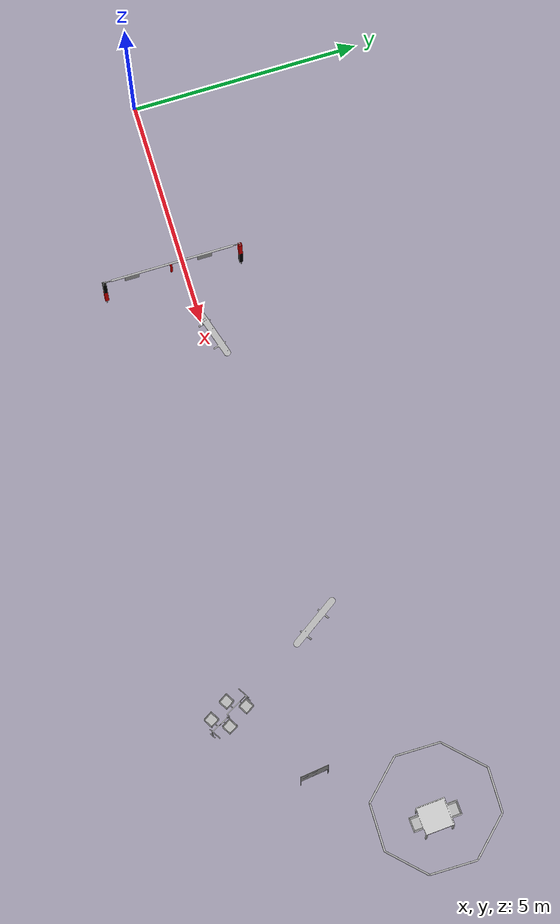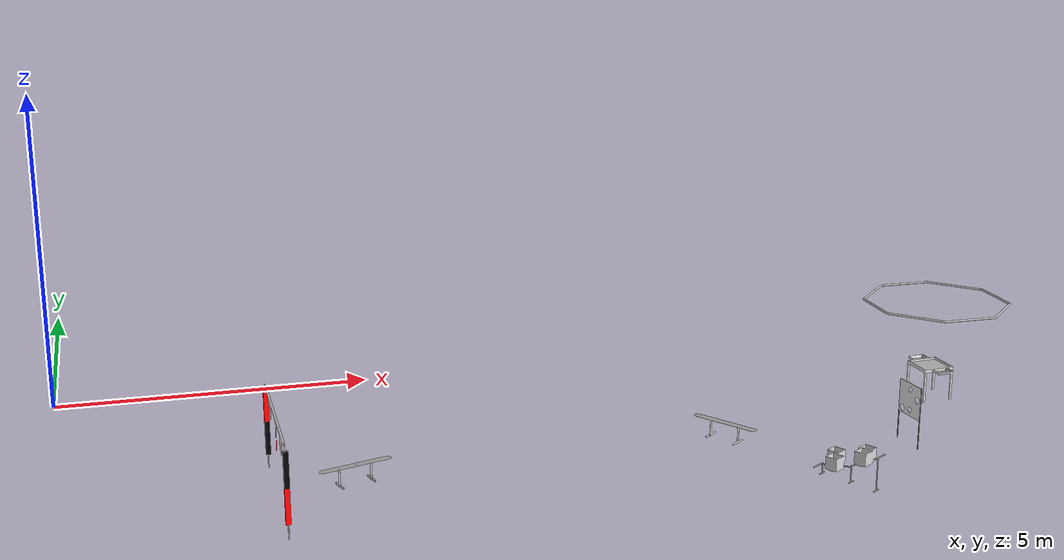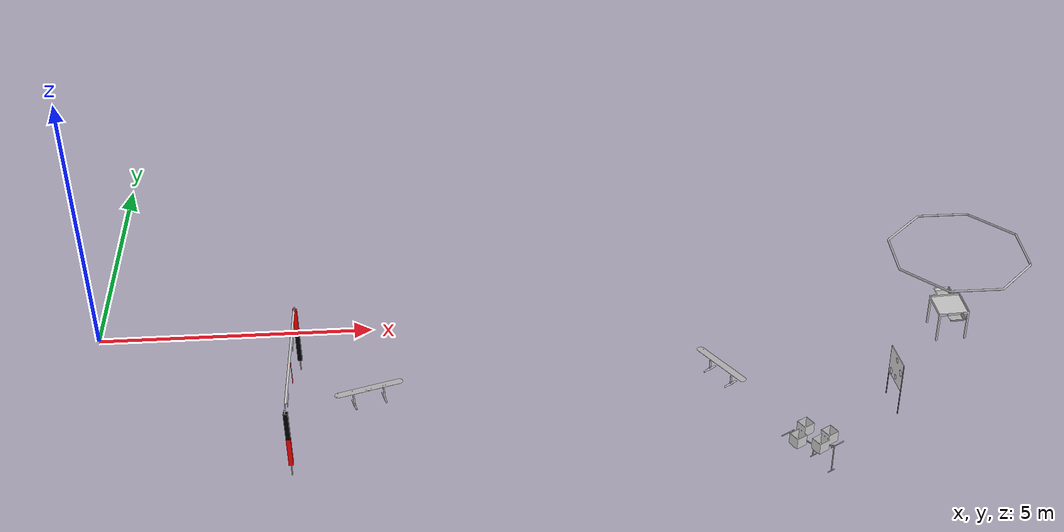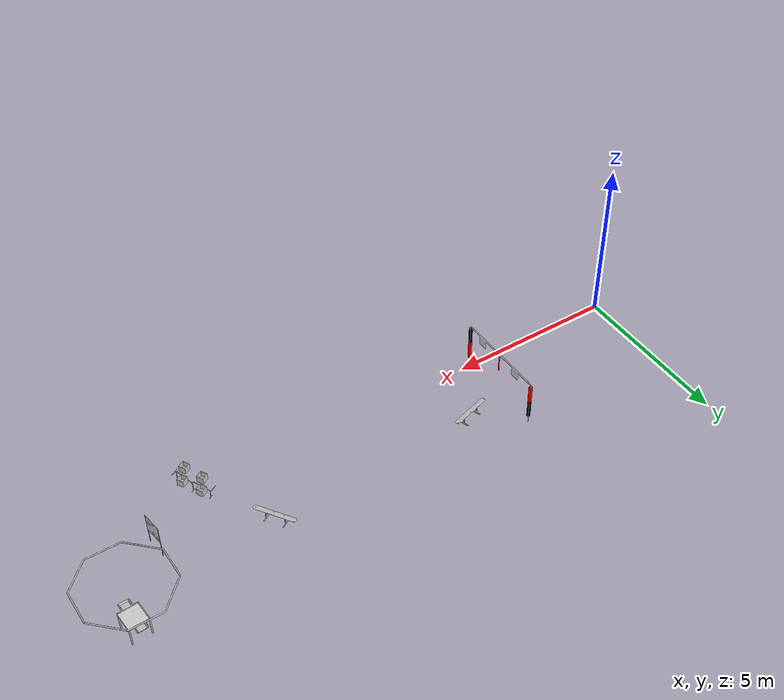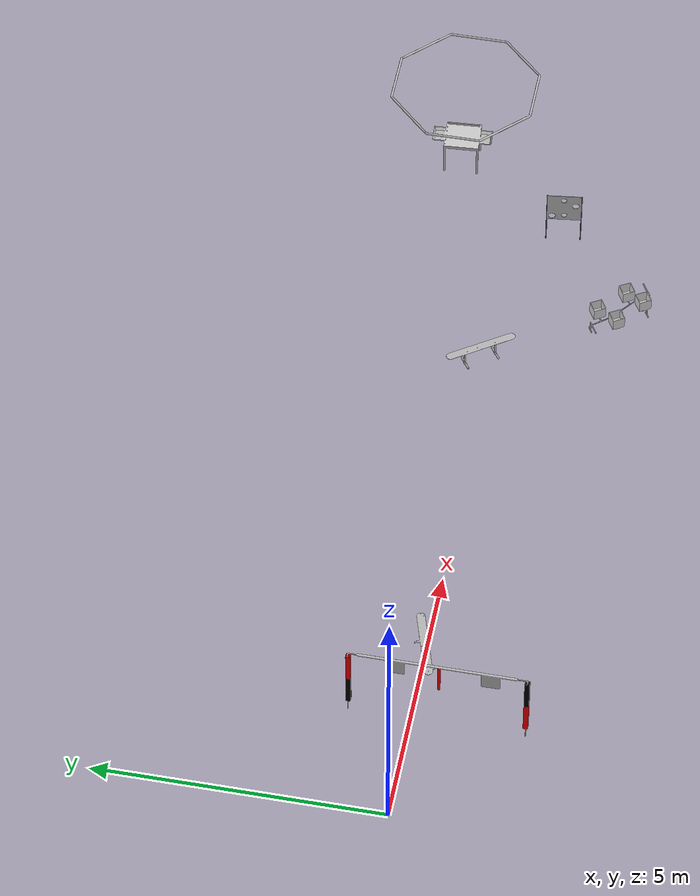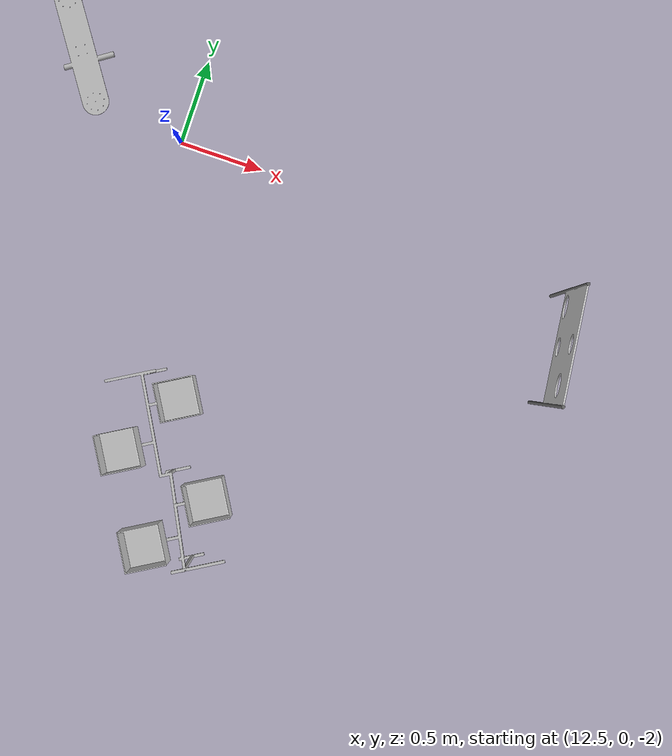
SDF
<sdf version="1.6">
 <world name="competition">
  <scene>
   <grid>false</grid>
   <ambient>0.4 0.4 0.4 1.0</ambient>
   <background>0.0 0.4 0.7 1.0</background>
   <shadows>true</shadows>
  </scene>
  <light type="directional" name="sun">
   <pose>0 0 10 0 0 0</pose>
   <diffuse>0.8 0.8 0.8 1</diffuse>
   <specular>0.2 0.2 0.2 1</specular>
   <direction>-0.5 0.1 -0.9</direction>
   <attenuation>
    <range>1000</range>
    <constant>0.9</constant>
    <linear>0.01</linear>
    <quadratic>0.001</quadratic>
   </attenuation>
  </light>
  <plugin filename="gz-sim-physics-system" name="gz::sim::systems::Physics"/>
  <plugin filename="gz-sim-user-commands-system" name="gz::sim::systems::UserCommands"/>
  <plugin filename="gz-sim-scene-broadcaster-system" name="gz::sim::systems::SceneBroadcaster"/>
  <plugin filename="gz-sim-sensors-system" name="gz::sim::systems::Sensors">
   <render_engine>ogre2</render_engine>
  </plugin>
  <plugin filename="gz-sim-buoyancy-system" name="gz::sim::systems::Buoyancy">
   <graded_buoyancy>
    <default_density>1025</default_density>
    <density_change><above_depth>0</above_depth><density>1.125</density></density_change>
   </graded_buoyancy>
  </plugin>
  <plugin filename="gz-sim-imu-system" name="gz::sim::systems::Imu"/>
  <physics name="1ms" type="dart">
   <max_step_size>0.02</max_step_size>
   <real_time_factor>1</real_time_factor>
  </physics>
  <include><uri>model://competition_gate</uri><pose>3.44451 -0.19134 0.25 0 0 3.13999</pose></include>
  <include><uri>model://competition_cleanup</uri><pose>16.4801 1.715959 -1.320358 0 0 -1.50365</pose></include>
  <include><uri>model://competition_dropper</uri><pose>12.7869 -1.3222 -2.0 0 0 2.10738</pose></include>
  <include><uri>model://competition_octagon</uri><pose>15.1911 1.614284 0 0 0 0</pose></include>
  <include><uri>model://competition_path</uri><pose>4.82476 0.26978 -1.709673 0 0 -1.27847</pose></include>
  <include>
   <name>competition_pathmarker_2</name>
   <uri>model://competition_path</uri>
   <pose>11.6845 0.513518 -1.709673 0 0 -2.54361</pose>
  </include>
  <include><uri>model://competition_tagging</uri><pose>14.9023 -0.62346 -1.13067 0 0 1.69616</pose></include>
 </world>
</sdf>

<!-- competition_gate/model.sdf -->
<sdf version='1.7'>
  <model name='competition_gate'>
    <static>true</static>
    <link name='base_link'>
      <pose>0 0 -1 0 0 1.57</pose>
      <inertial>
        <pose>0 0 0 0 -0 0</pose>
        <mass>1</mass>
        <inertia>
          <ixx>0.166667</ixx>
          <ixy>0</ixy>
          <ixz>0</ixz>
          <iyy>0.166667</iyy>
          <iyz>0</iyz>
          <izz>0.166667</izz>
        </inertia>
      </inertial>
      <collision name='base_link_collision'>
        <pose>0 0 0 0 -0 0</pose>
        <geometry>
          <mesh>
            <uri>file://competition_gate/meshes/startgate.dae</uri>
          </mesh>
        </geometry>
      </collision>
      <visual name='base_link_visual'>
        <pose>0 0 0 0 -0 0</pose>
        <geometry>
          <mesh>
            <uri>file://competition_gate/meshes/startgate.dae</uri>
          </mesh>
        </geometry>
      </visual>
    </link>
  </model>
</sdf>

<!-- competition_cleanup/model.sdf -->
<sdf version='1.7'>
  <model name='competition_cleanup'>
    <static>true</static>
    <link name='base_link'>
      <pose>0 0 0 0 -0 0</pose>
      <inertial>
        <pose>-0.000000 0.000819 -0.079716 0 0 0</pose>
        <mass>1</mass>
        <inertia>
          <ixx>0.001055</ixx>
          <ixy>0.000000</ixy>
          <ixz>0.000000</ixz>
          <iyy>0.001449</iyy>
          <iyz>-0.000001</iyz>
          <izz>0.001770</izz>
        </inertia>
      </inertial>
      <collision name='base_link_collision'>
        <pose>0 0 0 0 -0 0</pose>
        <geometry>
          <mesh>
             <uri>model://competition_cleanup/meshes/cleanuptable.dae</uri>
          </mesh>
        </geometry>
      </collision>
      <visual name='base_link_visual'>
        <pose>0 0 0 0 -0 0</pose>
        <geometry>
          <mesh>
             <uri>model://competition_cleanup/meshes/cleanuptable.dae</uri>
          </mesh>
        </geometry>
      </visual>
    </link>
  </model>
</sdf>

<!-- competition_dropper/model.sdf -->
<sdf version='1.7'>
  <model name='competition_dropper'>
    <static>true</static>
    <link name='base_link'>
      <pose>0 0 0 0 -0 0</pose>
      <inertial>
        <pose>0 0 0 0 -0 0</pose>
        <mass>1</mass>
        <inertia>
          <ixx>0.166667</ixx>
          <ixy>0</ixy>
          <ixz>0</ixz>
          <iyy>0.166667</iyy>
          <iyz>0</iyz>
          <izz>0.166667</izz>
        </inertia>
      </inertial>
      <collision name='base_link_collision'>
        <pose>0 0 0 0 -0 0</pose>
        <geometry>
          <mesh>
             <uri>model://competition_dropper/meshes/bruvbin.dae</uri>
          </mesh>
        </geometry>
      </collision>
      <visual name='base_link_visual'>
        <pose>0 0 0 0 -0 0</pose>
        <geometry>
          <mesh>
            <uri>model://competition_dropper/meshes/bruvbin.dae</uri>
          </mesh>
        </geometry>
      </visual>
    </link>
  </model>
</sdf>

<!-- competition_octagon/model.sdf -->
<sdf version='1.7'>
  <model name='competition_octagon'>
    <static>true</static>
    <link name='base_link'>
      <pose>0 0 0 0 -0 0</pose>
      <inertial>
        <pose>0 0 0 0 -0 0</pose>
        <mass>1</mass>
        <inertia>
          <ixx>0.166667</ixx>
          <ixy>0</ixy>
          <ixz>0</ixz>
          <iyy>0.166667</iyy>
          <iyz>0</iyz>
          <izz>0.166667</izz>
        </inertia>
      </inertial>
      <collision name='base_link_collision'>
        <pose>0 0 0 0 -0 0</pose>
        <geometry>
          <mesh>
             <uri>model://competition_octagon/meshes/octagon.dae</uri>
          </mesh>
        </geometry>
      </collision>
      <visual name='base_link_visual'>
        <pose>0 0 0 0 -0 0</pose>
        <geometry>
          <mesh>
            <uri>model://competition_octagon/meshes/octagon.dae</uri>
          </mesh>
        </geometry>
      </visual>
    </link>
  </model>
</sdf>

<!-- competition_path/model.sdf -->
<sdf version='1.7'>
  <model name='competition_pathmarker'>
    <static>true</static>
    <link name='base_link'>
      <pose>0 0 0 0 -0 0</pose>
      <inertial>
        <pose>0 0 0 0 -0 0</pose>
        <mass>1</mass>
        <inertia>
          <ixx>0.166667</ixx>
          <ixy>0</ixy>
          <ixz>0</ixz>
          <iyy>0.166667</iyy>
          <iyz>0</iyz>
          <izz>0.166667</izz>
        </inertia>
      </inertial>
      <collision name='base_link_collision'>
        <pose>0 0 0 0 -0 0</pose>
        <geometry>
          <mesh>
             <uri>model://competition_path/meshes/pathmarker.dae</uri>
          </mesh>
        </geometry>
      </collision>
      <visual name='base_link_visual'>
        <pose>0 0 0 0 -0 0</pose>
        <geometry>
          <mesh>
            <uri>model://competition_path/meshes/pathmarker.dae</uri>
          </mesh>
        </geometry>
      </visual>
    </link>
  </model>
</sdf>

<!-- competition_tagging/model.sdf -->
<sdf version='1.7'>
  <model name='competition_tagging'>
    <static>true</static>
    <link name='base_link'>
      <pose>0 0 0 0 -0 0</pose>
      <inertial>
        <pose>0 0 0 0 -0 0</pose>
        <mass>1</mass>
        <inertia>
          <ixx>0.166667</ixx>
          <ixy>0</ixy>
          <ixz>0</ixz>
          <iyy>0.166667</iyy>
          <iyz>0</iyz>
          <izz>0.166667</izz>
        </inertia>
      </inertial>
      <collision name='base_link_collision'>
        <pose>0 0 0 0 -0 0</pose>
        <geometry>
          <mesh>
             <uri>model://competition_tagging/meshes/taggingtarget.dae</uri>
          </mesh>
        </geometry>
      </collision>
      <visual name='base_link_visual'>
        <pose>0 0 0 0 -0 0</pose>
        <geometry>
          <mesh>
            <uri>model://competition_tagging/meshes/taggingtarget.dae</uri>
          </mesh>
        </geometry>
      </visual>
    </link>
  </model>
</sdf>
